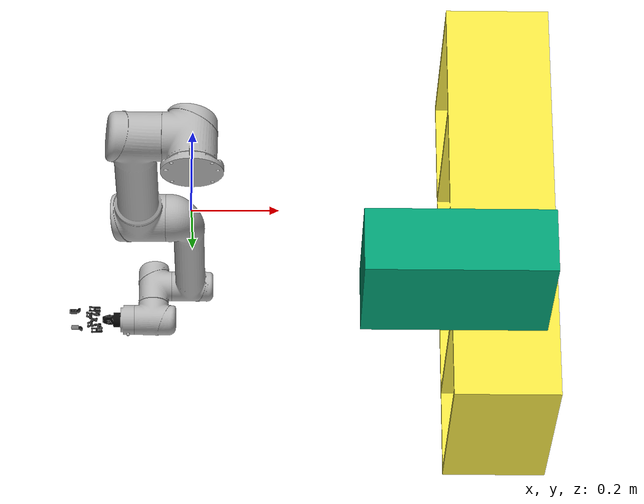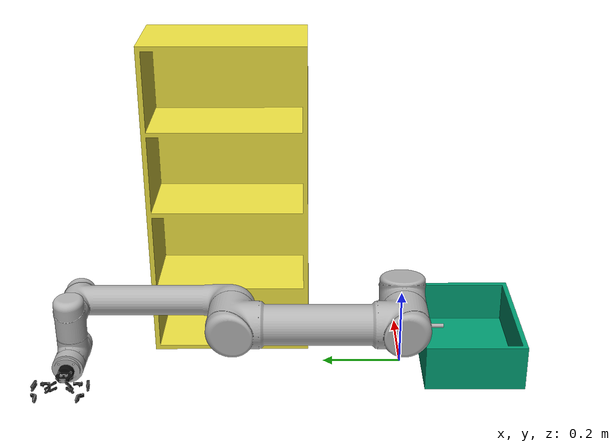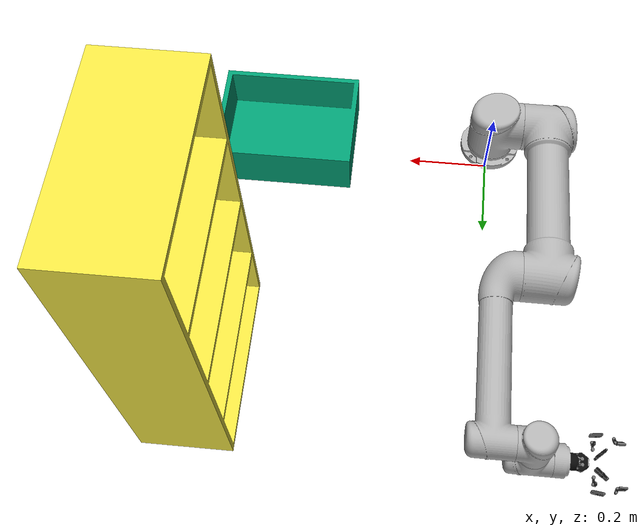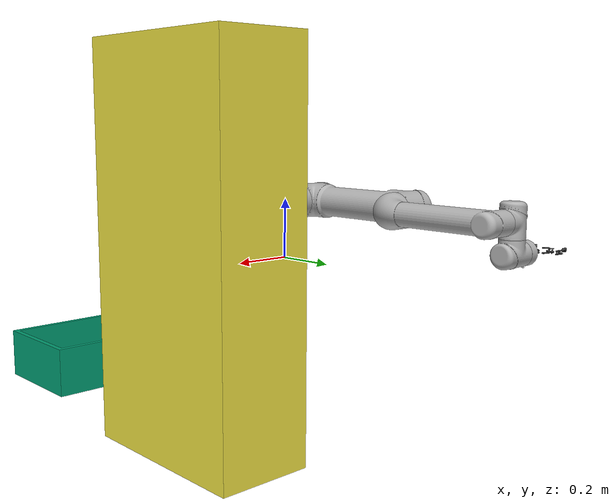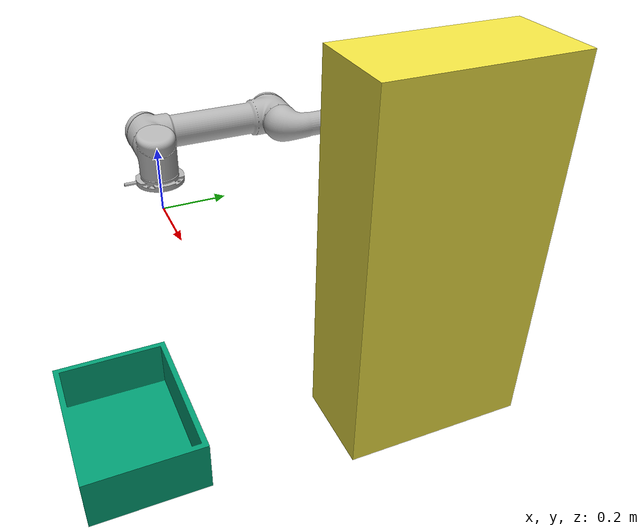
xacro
<?xml version="1.0"?>
<robot xmlns:xacro="http://wiki.ros.org/xacro"
       name="ur5" >

  <xacro:arg name="transmission_hw_interface" default="hardware_interface/PositionJointInterface"/>

  <!-- common stuff -->
  <xacro:include filename="$(find ur_description)/urdf/common.gazebo.xacro" />

  <!-- ur5 and gripper -->
  <xacro:include filename="$(find ur_description)/urdf/ur5.urdf.xacro" />
  <xacro:include filename="$(find robotiq_85_description)/urdf/robotiq_85_gripper.urdf.xacro" />
  <!-- camera and kinecrt  -->
  <xacro:include filename="$(find ur_description)/urdf/sensors/camera.urdf.xacro" />
  <xacro:include filename="$(find ur_description)/urdf/sensors/kinect.urdf.xacro" />

  <!-- bin and cabin  -->
  <xacro:include filename="$(find ur_platform)/urdf/bin.urdf.xacro" />
  <xacro:include filename="$(find ur_platform)/urdf/cabine.urdf.xacro" />

  <!-- arm -->
  <xacro:ur5_robot prefix="" joint_limited="false"
    transmission_hw_interface="$(arg transmission_hw_interface)"
  />

  <link name="world" />

  <joint name="world_joint" type="fixed">
    <parent link="world" />
    <child link = "base_link" />
    <origin xyz="0.0 0.0 0.1" rpy="0.0 0.0 0.0" />
  </joint>

  <xacro:robotiq_85_gripper prefix="" parent="ee_link" >
      <origin xyz="0 0 0" rpy="0 0 0"/>
  </xacro:robotiq_85_gripper>
  <!-- Sensors  -->
  <gazebo>
    <plugin name="gazebo_grasp_fix" filename="libgazebo_grasp_fix.so">
         <arm>
            <arm_name>urz</arm_name>
            <palm_link> wrist_3_link  </palm_link>
            <gripper_link> gripper_finger1_finger_tip_link </gripper_link>
            <gripper_link> gripper_finger2_finger_tip_link </gripper_link>
         </arm>
        <forces_angle_tolerance>90</forces_angle_tolerance>
        <update_rate>150</update_rate>
        <grip_count_threshold>8</grip_count_threshold>
        <max_grip_count>16</max_grip_count>
        <release_tolerance>0.005</release_tolerance>
        <disable_collisions_on_attach>true</disable_collisions_on_attach>
        <contact_topic>__default_topic__</contact_topic>
     </plugin>
 </gazebo>

</robot>

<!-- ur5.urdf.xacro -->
<robot name="urz" xmlns:xacro="http://wiki.ros.org/xacro">

  <xacro:include filename="$(find ur_description)/urdf/ur.transmission.xacro" />
  <xacro:include filename="$(find ur_description)/urdf/ur.gazebo.xacro" />

  <xacro:macro name="cylinder_inertial" params="radius length mass *origin">
    <inertial>
      <mass value="${mass}" />
      <xacro:insert_block name="origin" />
      <inertia ixx="${0.0833333 * mass * (3 * radius * radius + length * length)}" ixy="0.0" ixz="0.0"
        iyy="${0.0833333 * mass * (3 * radius * radius + length * length)}" iyz="0.0"
        izz="${0.5 * mass * radius * radius}" />
    </inertial>
  </xacro:macro>

  <xacro:macro name="ur5_robot" params="prefix joint_limited
    shoulder_pan_lower_limit:=${-pi}    shoulder_pan_upper_limit:=${pi}
    shoulder_lift_lower_limit:=${-pi}    shoulder_lift_upper_limit:=${pi}
    elbow_joint_lower_limit:=${-pi}    elbow_joint_upper_limit:=${pi}
    wrist_1_lower_limit:=${-pi}    wrist_1_upper_limit:=${pi}
    wrist_2_lower_limit:=${-pi}    wrist_2_upper_limit:=${pi}
    wrist_3_lower_limit:=${-pi}    wrist_3_upper_limit:=${pi}
    transmission_hw_interface:=VelocityJointInterface
    safety_limits:=false safety_pos_margin:=0.15
    safety_k_position:=20">

    <!-- Inertia parameters -->
    <xacro:property name="base_mass" value="4.0" />  <!-- This mass might be incorrect -->
    <xacro:property name="shoulder_mass" value="3.7000" />
    <xacro:property name="upper_arm_mass" value="8.3930" />
    <xacro:property name="forearm_mass" value="2.2750" />
    <xacro:property name="wrist_1_mass" value="1.2190" />
    <xacro:property name="wrist_2_mass" value="1.2190" />
    <xacro:property name="wrist_3_mass" value="0.1879" />

    <xacro:property name="shoulder_cog" value="0.0 0.00193 -0.02561" />
    <xacro:property name="upper_arm_cog" value="0.0 -0.024201 0.2125" />
    <xacro:property name="forearm_cog" value="0.0 0.0265 0.11993" />
    <xacro:property name="wrist_1_cog" value="0.0 0.110949 0.01634" />
    <xacro:property name="wrist_2_cog" value="0.0 0.0018 0.11099" />
    <xacro:property name="wrist_3_cog" value="0.0 0.001159 0.0" />

    <!-- Kinematic model -->
    <!-- Properties from urcontrol.conf -->
    <xacro:property name="d1" value="0.089159" />
    <xacro:property name="a2" value="-0.42500" />
    <xacro:property name="a3" value="-0.39225" />
    <xacro:property name="d4" value="0.10915" />
    <xacro:property name="d5" value="0.09465" />
    <xacro:property name="d6" value="0.0823" />

    <!-- Arbitrary offsets for shoulder/elbow joints -->
    <xacro:property name="shoulder_offset" value="0.13585" />  <!-- measured from model -->
    <xacro:property name="elbow_offset" value="-0.1197" /> <!-- measured from model -->

    <!-- link lengths used in model -->
    <xacro:property name="shoulder_height" value="${d1}" />
    <xacro:property name="upper_arm_length" value="${-a2}" />
    <xacro:property name="forearm_length" value="${-a3}" />
    <xacro:property name="wrist_1_length" value="${d4 - elbow_offset - shoulder_offset}" />
    <xacro:property name="wrist_2_length" value="${d5}" />
    <xacro:property name="wrist_3_length" value="${d6}" />
    <!--property name="shoulder_height" value="0.089159" /-->
    <!--property name="shoulder_offset" value="0.13585" /-->  <!-- shoulder_offset - elbow_offset + wrist_1_length = 0.10915 -->
    <!--property name="upper_arm_length" value="0.42500" /-->
    <!--property name="elbow_offset" value="0.1197" /-->       <!-- CAD measured -->
    <!--property name="forearm_length" value="0.39225" /-->
    <!--property name="wrist_1_length" value="0.093" /-->     <!-- CAD measured -->
    <!--property name="wrist_2_length" value="0.09465" /-->   <!-- In CAD this distance is 0.930, but in the spec it is 0.09465 -->
    <!--property name="wrist_3_length" value="0.0823" /-->

    <xacro:property name="shoulder_radius" value="0.060" />   <!-- manually measured -->
    <xacro:property name="upper_arm_radius" value="0.054" />  <!-- manually measured -->
    <xacro:property name="elbow_radius" value="0.060" />      <!-- manually measured -->
    <xacro:property name="forearm_radius" value="0.040" />    <!-- manually measured -->
    <xacro:property name="wrist_radius" value="0.045" />      <!-- manually measured -->

    <link name="${prefix}base_link" >
      <visual>
        <geometry>
          <mesh filename="package://ur_description/meshes/ur5/visual/base.dae" />
        </geometry>
        <material name="LightGrey">
          <color rgba="0.7 0.7 0.7 1.0"/>
        </material>
      </visual>
      <collision>
        <geometry>
          <mesh filename="package://ur_description/meshes/ur5/collision/base.stl" />
        </geometry>
      </collision>
      <xacro:cylinder_inertial radius="0.06" length="0.05" mass="${base_mass}">
        <origin xyz="0.0 0.0 0.0" rpy="0 0 0" />
      </xacro:cylinder_inertial>
    </link>

    <joint name="${prefix}shoulder_pan_joint" type="revolute">
      <parent link="${prefix}base_link" />
      <child link = "${prefix}shoulder_link" />
      <origin xyz="0.0 0.0 ${shoulder_height}" rpy="0.0 0.0 ${pi/2}" />
      <axis xyz="0 0 1" />
      <xacro:unless value="${joint_limited}">
        <limit lower="${-2.0 * pi}" upper="${2.0 * pi}" effort="150.0" velocity="3.15"/>
        <xacro:if value="${safety_limits}">
          <safety_controller soft_lower_limit="${-2.0 * pi + safety_pos_margin}" soft_upper_limit="${2.0 * pi - safety_pos_margin}" k_position="${safety_k_position}" k_velocity="0.0"/>
        </xacro:if>
      </xacro:unless>
      <xacro:if value="${joint_limited}">
        <limit lower="${shoulder_pan_lower_limit}" upper="${shoulder_pan_upper_limit}" effort="150.0" velocity="3.15"/>
        <xacro:if value="${safety_limits}">
          <safety_controller soft_lower_limit="${shoulder_pan_lower_limit + safety_pos_margin}" soft_upper_limit="${shoulder_pan_upper_limit - safety_pos_margin}" k_position="${safety_k_position}" k_velocity="0.0"/>
        </xacro:if>
      </xacro:if>
      <dynamics damping="0.0" friction="0.0"/>
    </joint>

    <link name="${prefix}shoulder_link">
      <visual>
        <geometry>
          <mesh filename="package://ur_description/meshes/ur5/visual/shoulder.dae" />
        </geometry>
        <material name="LightGrey">
          <color rgba="0.7 0.7 0.7 1.0"/>
        </material>
      </visual>
      <collision>
        <geometry>
          <mesh filename="package://ur_description/meshes/ur5/collision/shoulder.stl" />
        </geometry>
      </collision>
      <xacro:cylinder_inertial radius="0.06" length="0.15" mass="${shoulder_mass}">
        <origin xyz="0.0 0.0 0.0" rpy="0 0 0" />
      </xacro:cylinder_inertial>
    </link>

    <joint name="${prefix}shoulder_lift_joint" type="revolute">
      <parent link="${prefix}shoulder_link" />
      <child link = "${prefix}upper_arm_link" />
      <origin xyz="0.0 ${shoulder_offset} 0.0" rpy="0.0 ${pi / 2.0} 0.0" />
      <axis xyz="0 1 0" />
      <xacro:unless value="${joint_limited}">
        <limit lower="${-2.0 * pi}" upper="${2.0 * pi}" effort="150.0" velocity="3.15"/>
        <xacro:if value="${safety_limits}">
          <safety_controller soft_lower_limit="${-2.0 * pi + safety_pos_margin}" soft_upper_limit="${2.0 * pi - safety_pos_margin}" k_position="${safety_k_position}" k_velocity="0.0"/>
        </xacro:if>
      </xacro:unless>
      <xacro:if value="${joint_limited}">
        <limit lower="${shoulder_lift_lower_limit}" upper="${shoulder_lift_upper_limit}" effort="150.0" velocity="3.15"/>
        <xacro:if value="${safety_limits}">
          <safety_controller soft_lower_limit="${shoulder_lift_lower_limit + safety_pos_margin}" soft_upper_limit="${shoulder_lift_upper_limit - safety_pos_margin}" k_position="${safety_k_position}" k_velocity="0.0"/>
        </xacro:if>
      </xacro:if>
      <dynamics damping="0.0" friction="0.0"/>
    </joint>

    <link name="${prefix}upper_arm_link">
      <visual>
        <geometry>
          <mesh filename="package://ur_description/meshes/ur5/visual/upperarm.dae" />
        </geometry>
        <material name="LightGrey">
          <color rgba="0.7 0.7 0.7 1.0"/>
        </material>
      </visual>
      <collision>
        <geometry>
          <mesh filename="package://ur_description/meshes/ur5/collision/upperarm.stl" />
        </geometry>
      </collision>
      <xacro:cylinder_inertial radius="0.06" length="0.56" mass="${upper_arm_mass}">
        <origin xyz="0.0 0.0 0.28" rpy="0 0 0" />
      </xacro:cylinder_inertial>
    </link>

    <joint name="${prefix}elbow_joint" type="revolute">
      <parent link="${prefix}upper_arm_link" />
      <child link = "${prefix}forearm_link" />
      <origin xyz="0.0 ${elbow_offset} ${upper_arm_length}" rpy="0.0 0.0 0.0" />
      <axis xyz="0 1 0" />
      <xacro:unless value="${joint_limited}">
        <limit lower="${-pi}" upper="${pi}" effort="150.0" velocity="3.15"/>
        <xacro:if value="${safety_limits}">
          <safety_controller soft_lower_limit="${-2.0 * pi + safety_pos_margin}" soft_upper_limit="${2.0 * pi - safety_pos_margin}" k_position="${safety_k_position}" k_velocity="0.0"/>
        </xacro:if>
      </xacro:unless>
      <xacro:if value="${joint_limited}">
        <limit lower="${elbow_joint_lower_limit}" upper="${elbow_joint_upper_limit}" effort="150.0" velocity="3.15"/>
        <xacro:if value="${safety_limits}">
          <safety_controller soft_lower_limit="${elbow_joint_lower_limit + safety_pos_margin}" soft_upper_limit="${elbow_joint_upper_limit - safety_pos_margin}" k_position="${safety_k_position}" k_velocity="0.0"/>
        </xacro:if>
      </xacro:if>
      <dynamics damping="0.0" friction="0.0"/>
    </joint>

    <link name="${prefix}forearm_link">
      <visual>
        <geometry>
          <mesh filename="package://ur_description/meshes/ur5/visual/forearm.dae" />
        </geometry>
        <material name="LightGrey">
          <color rgba="0.7 0.7 0.7 1.0"/>
        </material>
      </visual>
      <collision>
        <geometry>
          <mesh filename="package://ur_description/meshes/ur5/collision/forearm.stl" />
        </geometry>
      </collision>
      <xacro:cylinder_inertial radius="0.06" length="${-a3}" mass="${forearm_mass}">
        <origin xyz="0.0 0.0 ${-a3/2}" rpy="0 0 0" />
      </xacro:cylinder_inertial>
    </link>

    <joint name="${prefix}wrist_1_joint" type="revolute">
      <parent link="${prefix}forearm_link" />
      <child link = "${prefix}wrist_1_link" />
      <origin xyz="0.0 0.0 ${forearm_length}" rpy="0.0 ${pi / 2.0} 0.0" />
      <axis xyz="0 1 0" />
      <xacro:unless value="${joint_limited}">
        <limit lower="${-2.0 * pi}" upper="${2.0 * pi}" effort="28.0" velocity="3.2"/>
        <xacro:if value="${safety_limits}">
          <safety_controller soft_lower_limit="${-2.0 * pi + safety_pos_margin}" soft_upper_limit="${2.0 * pi - safety_pos_margin}" k_position="${safety_k_position}" k_velocity="0.0"/>
        </xacro:if>
      </xacro:unless>
      <xacro:if value="${joint_limited}">
        <limit lower="${wrist_1_lower_limit}" upper="${wrist_1_upper_limit}" effort="28.0" velocity="3.2"/>
        <xacro:if value="${safety_limits}">
          <safety_controller soft_lower_limit="${wrist_1_lower_limit + safety_pos_margin}" soft_upper_limit="${wrist_1_upper_limit - safety_pos_margin}" k_position="${safety_k_position}" k_velocity="0.0"/>
        </xacro:if>
      </xacro:if>
      <dynamics damping="0.0" friction="0.0"/>
    </joint>

    <link name="${prefix}wrist_1_link">
      <visual>
        <geometry>
          <mesh filename="package://ur_description/meshes/ur5/visual/wrist1.dae" />
        </geometry>
        <material name="LightGrey">
          <color rgba="0.7 0.7 0.7 1.0"/>
        </material>
      </visual>
      <collision>
        <geometry>
          <mesh filename="package://ur_description/meshes/ur5/collision/wrist1.stl" />
        </geometry>
      </collision>
      <xacro:cylinder_inertial radius="0.06" length="0.12" mass="${wrist_1_mass}">
        <origin xyz="0.0 ${wrist_1_length} 0.0" rpy="0 0 0" />
      </xacro:cylinder_inertial>
    </link>

    <joint name="${prefix}wrist_2_joint" type="revolute">
      <parent link="${prefix}wrist_1_link" />
      <child link = "${prefix}wrist_2_link" />
      <origin xyz="0.0 ${wrist_1_length} 0.0" rpy="0.0 0.0 0.0" />
      <axis xyz="0 0 1" />
      <xacro:unless value="${joint_limited}">
        <limit lower="${-2.0 * pi}" upper="${2.0 * pi}" effort="28.0" velocity="3.2"/>
        <xacro:if value="${safety_limits}">
          <safety_controller soft_lower_limit="${-2.0 * pi + safety_pos_margin}" soft_upper_limit="${2.0 * pi - safety_pos_margin}" k_position="${safety_k_position}" k_velocity="0.0"/>
        </xacro:if>
      </xacro:unless>
      <xacro:if value="${joint_limited}">
        <limit lower="${wrist_2_lower_limit}" upper="${wrist_2_upper_limit}" effort="28.0" velocity="3.2"/>
        <xacro:if value="${safety_limits}">
          <safety_controller soft_lower_limit="${wrist_2_lower_limit + safety_pos_margin}" soft_upper_limit="${wrist_2_upper_limit - safety_pos_margin}" k_position="${safety_k_position}" k_velocity="0.0"/>
        </xacro:if>
      </xacro:if>
      <dynamics damping="0.0" friction="0.0"/>
    </joint>

    <link name="${prefix}wrist_2_link">
      <visual>
        <geometry>
          <mesh filename="package://ur_description/meshes/ur5/visual/wrist2.dae" />
        </geometry>
        <material name="LightGrey">
          <color rgba="0.7 0.7 0.7 1.0"/>
        </material>
      </visual>
      <collision>
        <geometry>
          <mesh filename="package://ur_description/meshes/ur5/collision/wrist2.stl" />
        </geometry>
      </collision>
      <xacro:cylinder_inertial radius="0.06" length="0.12" mass="${wrist_2_mass}">
        <origin xyz="0.0 0.0 ${wrist_2_length}" rpy="0 0 0" />
      </xacro:cylinder_inertial>
    </link>

    <joint name="${prefix}wrist_3_joint" type="revolute">
      <parent link="${prefix}wrist_2_link" />
      <child link = "${prefix}wrist_3_link" />
      <origin xyz="0.0 0.0 ${wrist_2_length}" rpy="0.0 0.0 0.0" />
      <axis xyz="0 1 0" />
      <xacro:unless value="${joint_limited}">
        <limit lower="${-2.0 * pi}" upper="${2.0 * pi}" effort="28.0" velocity="3.2"/>
        <xacro:if value="${safety_limits}">
          <safety_controller soft_lower_limit="${-2.0 * pi + safety_pos_margin}" soft_upper_limit="${2.0 * pi - safety_pos_margin}" k_position="${safety_k_position}" k_velocity="0.0"/>
        </xacro:if>
      </xacro:unless>
      <xacro:if value="${joint_limited}">
        <limit lower="${wrist_3_lower_limit}" upper="${wrist_3_upper_limit}" effort="28.0" velocity="3.2"/>
        <xacro:if value="${safety_limits}">
          <safety_controller soft_lower_limit="${wrist_3_lower_limit + safety_pos_margin}" soft_upper_limit="${wrist_3_upper_limit - safety_pos_margin}" k_position="${safety_k_position}" k_velocity="0.0"/>
        </xacro:if>
      </xacro:if>
      <dynamics damping="0.0" friction="0.0"/>
    </joint>

    <link name="${prefix}wrist_3_link">
      <visual>
        <geometry>
          <mesh filename="package://ur_description/meshes/ur5/visual/wrist3.dae" />
        </geometry>
        <material name="LightGrey">
          <color rgba="0.7 0.7 0.7 1.0"/>
        </material>
      </visual>
      <collision>
        <geometry>
          <mesh filename="package://ur_description/meshes/ur5/collision/wrist3.stl" />
        </geometry>
      </collision>
      <xacro:cylinder_inertial radius="0.0375" length="0.0345" mass="${wrist_3_mass}">
        <origin xyz="0.0 ${wrist_3_length - 0.0345/2} 0.0" rpy="${pi/2} 0 0" />
      </xacro:cylinder_inertial>
    </link>

    <joint name="${prefix}ee_fixed_joint" type="fixed">
      <parent link="${prefix}wrist_3_link" />
      <child link = "${prefix}ee_link" />
      <origin xyz="0.0 ${wrist_3_length} 0.0" rpy="0.0 0.0 ${pi/2.0}" />
    </joint>

    <link name="${prefix}ee_link">
      <collision>
        <geometry>
          <box size="0.01 0.01 0.01"/>
        </geometry>
        <origin rpy="0 0 0" xyz="-0.01 0 0"/>
      </collision>
    </link>

    <xacro:ur_arm_transmission prefix="${prefix}" hw_interface="${transmission_hw_interface}" />
    <xacro:ur_arm_gazebo prefix="${prefix}" />

    <!-- ROS base_link to UR 'Base' Coordinates transform -->
    <link name="${prefix}base"/>
    <joint name="${prefix}base_link-base_fixed_joint" type="fixed">
      <!-- NOTE: this rotation is only needed as long as base_link itself is
                 not corrected wrt the real robot (ie: rotated over 180
                 degrees)
      -->
      <origin xyz="0 0 0" rpy="0 0 ${-pi}"/>
      <parent link="${prefix}base_link"/>
      <child link="${prefix}base"/>
    </joint>

    <!-- Frame coincident with all-zeros TCP on UR controller -->
    <link name="${prefix}tool0"/>
    <joint name="${prefix}wrist_3_link-tool0_fixed_joint" type="fixed">
      <origin xyz="0 ${wrist_3_length} 0" rpy="${pi/-2.0} 0 0"/>
      <parent link="${prefix}wrist_3_link"/>
      <child link="${prefix}tool0"/>
    </joint>

  </xacro:macro>
</robot>

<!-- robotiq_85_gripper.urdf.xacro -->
<robot name="robotiq_85_gripper" xmlns:xacro="http://ros.org/wiki/xacro">
    <xacro:include filename="$(find robotiq_85_description)/urdf/robotiq_85_gripper.transmission.xacro" />

    <xacro:macro name="robotiq_85_gripper" params="prefix parent *origin">

        <joint name="${prefix}gripper_base_joint" type="fixed">
            <parent link="${parent}"/>
            <child link="${prefix}gripper_base_link"/>
            <xacro:insert_block name="origin"/>
        </joint>

        <link name="${prefix}gripper_base_link">
            <visual>
                <geometry>
                    <mesh filename="package://robotiq_85_description/meshes/visual/robotiq_85_base_link.dae"/>
                </geometry>
            </visual>
            <collision>
                <geometry>
                    <mesh filename="package://robotiq_85_description/meshes/collision/robotiq_85_base_link.stl"/>
                </geometry>
            </collision>
            <inertial>
                <mass value="0.636951" />
                <origin xyz="0.0 0.0 0.0" />
                <inertia ixx = "0.000380" ixy = "0.000000" ixz = "0.000000"
                         iyx = "0.000000" iyy = "0.001110" iyz = "0.000000"
                         izx = "0.000000" izy = "0.000000" izz = "0.001171" />
            </inertial>
        </link>

        -->

        <joint name="${prefix}gripper_finger1_joint" type="revolute">
            <parent link="${prefix}gripper_base_link"/>
            <child link="${prefix}gripper_finger1_knuckle_link"/>
            <axis xyz="0 0 1"/>
            <origin rpy="${pi} 0.0 0.0" xyz="0.05490451627 0.03060114443 0.0"/>
            <limit lower="0" upper="0.8" velocity="0.4" effort="5"/>
        </joint>

        <joint name="${prefix}gripper_finger2_joint" type="revolute">
            <parent link="${prefix}gripper_base_link"/>
            <child link="${prefix}gripper_finger2_knuckle_link"/>
            <axis xyz="0 0 1"/>
            <origin rpy="0.0 0.0 0.0" xyz="0.05490451627 -0.03060114443 0.0"/>
            <limit lower="-3.14" upper="3.14" velocity="100.0" effort="5"/>
            <mimic joint="${prefix}gripper_finger1_joint"/>
        </joint>

        <link name="${prefix}gripper_finger1_knuckle_link">
            <visual>
                <geometry>
                    <mesh filename="package://robotiq_85_description/meshes/visual/robotiq_85_knuckle_link.dae"/>
                </geometry>
            </visual>
            <collision>
                <geometry>
                    <mesh filename="package://robotiq_85_description/meshes/collision/robotiq_85_knuckle_link.stl"/>
                </geometry>
            </collision>
            <inertial>
                <mass value="0.018491" />
                <origin xyz="0.0 0.0 0.0" />
                <inertia ixx = "0.000009" ixy = "-0.000001" ixz = "0.000000"
                         iyx = "-0.000001" iyy = "0.000001" iyz = "0.000000"
                         izx = "0.000000" izy = "0.000000" izz = "0.000010" />
            </inertial>
        </link>

        <link name="${prefix}gripper_finger2_knuckle_link">
            <visual>
                <geometry>
                    <mesh filename="package://robotiq_85_description/meshes/visual/robotiq_85_knuckle_link.dae"/>
                </geometry>
            </visual>
            <collision>
                <geometry>
                    <mesh filename="package://robotiq_85_description/meshes/collision/robotiq_85_knuckle_link.stl"/>
                </geometry>
            </collision>
            <inertial>
                <mass value="0.018491" />
                <origin xyz="0.0 0.0 0.0" />
                <inertia ixx = "0.000009" ixy = "-0.000001" ixz = "0.000000"
                         iyx = "-0.000001" iyy = "0.000001" iyz = "0.000000"
                         izx = "0.000000" izy = "0.000000" izz = "0.000010" />
            </inertial>
        </link>

        <joint name="${prefix}gripper_finger1_finger_joint" type="fixed">
            <parent link="${prefix}gripper_finger1_knuckle_link"/>
            <child link="${prefix}gripper_finger1_finger_link"/>
            <origin xyz="-0.00408552455 -0.03148604435 0.0" rpy="0 0 0" />
        </joint>

        <joint name="${prefix}gripper_finger2_finger_joint" type="fixed">
            <parent link="${prefix}gripper_finger2_knuckle_link"/>
            <child link="${prefix}gripper_finger2_finger_link"/>
            <origin xyz="-0.00408552455 -0.03148604435 0.0" rpy="0 0 0" />
        </joint>

        <link name="${prefix}gripper_finger1_finger_link">
            <visual>
                <geometry>
                    <mesh filename="package://robotiq_85_description/meshes/visual/robotiq_85_finger_link.dae"/>
                </geometry>
            </visual>
            <collision>
                <geometry>
                    <mesh filename="package://robotiq_85_description/meshes/collision/robotiq_85_finger_link.stl"/>
                </geometry>
            </collision>
            <inertial>
                <mass value="0.027309" />
                <origin xyz="0.0 0.0 0.0" />
                <inertia ixx = "0.000003" ixy = "-0.000002" ixz = "0.000000"
                         iyx = "-0.000002" iyy = "0.000021" iyz = "0.000000"
                         izx = "0.000000" izy = "0.000000" izz = "0.000020" />
            </inertial>
        </link>

        <link name="${prefix}gripper_finger2_finger_link">
            <visual>
                <geometry>
                    <mesh filename="package://robotiq_85_description/meshes/visual/robotiq_85_finger_link.dae"/>
                </geometry>
            </visual>
            <collision>
                <geometry>
                    <mesh filename="package://robotiq_85_description/meshes/collision/robotiq_85_finger_link.stl"/>
                </geometry>
            </collision>
            <inertial>
                <mass value="0.027309" />
                <origin xyz="0.0 0.0 0.0" />
                <inertia ixx = "0.000003" ixy = "-0.000002" ixz = "0.000000"
                         iyx = "-0.000002" iyy = "0.000021" iyz = "0.000000"
                         izx = "0.000000" izy = "0.000000" izz = "0.000020" />
            </inertial>
        </link>

        <joint name="${prefix}gripper_finger1_inner_knuckle_joint" type="revolute">
            <parent link="${prefix}gripper_base_link"/>
            <child link="${prefix}gripper_finger1_inner_knuckle_link"/>
            <axis xyz="0 0 1"/>
            <origin xyz="0.06142 0.0127 0" rpy="${pi} 0.0 0.0" />
            <limit lower="-3.14" upper="3.14" velocity="100.0" effort="100"/>
            <mimic joint="${prefix}gripper_finger1_joint" offset="0"/>
        </joint>

        <joint name="${prefix}gripper_finger2_inner_knuckle_joint" type="revolute">
            <parent link="${prefix}gripper_base_link"/>
            <child link="${prefix}gripper_finger2_inner_knuckle_link"/>
            <axis xyz="0 0 1"/>
            <origin xyz="0.06142 -0.0127 0" rpy="0 0 0"/>
            <limit lower="-3.14" upper="3.14" velocity="100.0" effort="100"/>
            <mimic joint="${prefix}gripper_finger1_joint" offset="0"/>
        </joint>

        <link name="${prefix}gripper_finger1_inner_knuckle_link">
            <visual>
                <geometry>
                    <mesh filename="package://robotiq_85_description/meshes/visual/robotiq_85_inner_knuckle_link.dae"/>
                </geometry>
            </visual>
            <collision>
                <geometry>
                    <mesh filename="package://robotiq_85_description/meshes/collision/robotiq_85_inner_knuckle_link.stl"/>
                </geometry>
            </collision>
            <inertial>
                <mass value="0.029951" />
                <origin xyz="0.0 0.0 0.0" />
                <inertia ixx = "0.000039" ixy = "0.000000" ixz = "0.000000"
                         iyx = "0.000000" iyy = "0.000005" iyz = "0.000000"
                         izx = "0.000000" izy = "0.000000" izz = "0.000035" />
            </inertial>
        </link>

        <link name="${prefix}gripper_finger2_inner_knuckle_link">
            <visual>
                <geometry>
                    <mesh filename="package://robotiq_85_description/meshes/visual/robotiq_85_inner_knuckle_link.dae"/>
                </geometry>
            </visual>
            <collision>
                <geometry>
                    <mesh filename="package://robotiq_85_description/meshes/collision/robotiq_85_inner_knuckle_link.stl"/>
                </geometry>
            </collision>
            <inertial>
                <mass value="0.029951" />
                <origin xyz="0.0 0.0 0.0" />
                <inertia ixx = "0.000039" ixy = "0.000000" ixz = "0.000000"
                         iyx = "0.000000" iyy = "0.000005" iyz = "0.000000"
                         izx = "0.000000" izy = "0.000000" izz = "0.000035" />
            </inertial>
        </link>

        <joint name="${prefix}gripper_finger1_finger_tip_joint" type="revolute">
            <parent link="${prefix}gripper_finger1_inner_knuckle_link"/>
            <child link="${prefix}gripper_finger1_finger_tip_link"/>
            <axis xyz="0 0 1"/>
            <origin xyz="0.04303959807 -0.03759940821 0.0" rpy="0.0 0.0 0.0"/>
            <limit lower="-3.14" upper="3.14" velocity="100.0" effort="10"/>
            <mimic joint="${prefix}gripper_finger1_joint" multiplier="-1"/>
        </joint>

        <joint name="${prefix}gripper_finger2_finger_tip_joint" type="revolute">
            <parent link="${prefix}gripper_finger2_inner_knuckle_link"/>
            <child link="${prefix}gripper_finger2_finger_tip_link"/>
            <axis xyz="0 0 1"/>
            <origin rpy="0.0 0.0 0.0" xyz="0.04303959807 -0.03759940821  0.0"/>
            <limit lower="-3.14" upper="3.14" velocity="100.0" effort="100"/>
            <mimic joint="${prefix}gripper_finger1_joint" multiplier="-1"/>
        </joint>

        <link name="${prefix}gripper_finger1_finger_tip_link">
            <visual>
                <geometry>
                    <mesh filename="package://robotiq_85_description/meshes/visual/robotiq_85_finger_tip_link.dae"/>
                </geometry>
            </visual>
            <collision>
                <geometry>
                    <mesh filename="package://robotiq_85_description/meshes/collision/robotiq_85_finger_tip_link.stl"/>
                </geometry>
            </collision>
            <inertial>
                <mass value="0.019555" />
                <origin xyz="0.0 0.0 0.0" />
                <inertia ixx = "0.000002" ixy = "0.000000" ixz = "0.000000"
                         iyx = "0.000000" iyy = "0.000005" iyz = "0.000000"
                         izx = "0.000000" izy = "0.000000" izz = "0.000006" />
            </inertial>
        </link>

        <link name="${prefix}gripper_finger2_finger_tip_link">
            <visual>
                <geometry>
                    <mesh filename="package://robotiq_85_description/meshes/visual/robotiq_85_finger_tip_link.dae"/>
                </geometry>
            </visual>
            <collision>
                <geometry>
                    <mesh filename="package://robotiq_85_description/meshes/collision/robotiq_85_finger_tip_link.stl"/>
                </geometry>
            </collision>
            <inertial>
                <mass value="0.019555" />
                <origin xyz="0.0 0.0 0.0" />
                <inertia ixx = "0.000002" ixy = "0.000000" ixz = "0.000000"
                         iyx = "0.000000" iyy = "0.000005" iyz = "0.000000"
                         izx = "0.000000" izy = "0.000000" izz = "0.000006" />
            </inertial>
        </link>

        <xacro:robotiq_85_gripper_transmission prefix="${prefix}" />

    </xacro:macro>
</robot>

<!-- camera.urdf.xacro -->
<!-- BOTTOM FIXED LINK
This link is the base of the arm in which arm is placed
-->
<robot name="camera" xmlns:xacro="http://ros.org/wiki/xacro">

   <material name="red">
        <color rgba="0.8 0.0 0.0 1.0"/>
   </material>
   <joint name="camera_joint" type="fixed">
        <origin xyz="0 0.6 0.9" rpy="0 ${pi/2} ${pi/2}"/>
        <parent link="base_link"/>
        <child link="camera_link"/>
   </joint>

   <!-- Camera -->
   <link name="camera_link">
       <origin xyz="0 0 0" rpy="0 0 0"/>
   </link>

   <xacro:include filename="$(find ur_description)/urdf/sensors/camera.gazebo.xacro"/>
</robot>

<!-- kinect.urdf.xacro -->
<robot xmlns:xacro="http://www.ros.org/wiki/xacro" name="kinect">

        <link name="kinect_link">
            <origin xyz="0 0 0" rpy="0 0 0"/>

        </link>

        <joint name="kinect_joint" type="fixed">
            <origin xyz="0 0.6 0.9" rpy="0 ${pi/2} ${pi/2}"/>
            <parent link="base_link"/>
            <child link="kinect_link"/>
        </joint>

        <xacro:include filename="$(find ur_description)/urdf/sensors/kinect.gazebo.xacro" />

</robot>

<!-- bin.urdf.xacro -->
<!-- |    This document was autogenerated by xacro from bin.urdf                       | -->
<!-- |    EDITING THIS FILE BY HAND IS NOT RECOMMENDED                                 | -->
<robot name="cabine" xmlns:xacro="http://ros.org/wiki/xacro">
  <!-- conveyor belt is just a long flat box for objects to slide on it -->
  <!-- world link -->
  <!-- base_link and its fixed joint -->
  <joint name="joint_fix_bin" type="fixed">
    <parent link="world"/>
    <child link="bin_link"/>
  </joint>
  <link name="bin_link">
    <collision>
      <origin rpy="1.57 0 0" xyz="0.3 0.1 -0.35"/>
      <geometry>
        <mesh filename="package://ur_platform/model/bin.stl"/>
      </geometry>
    </collision>
    <visual>
      <origin rpy="1.57 0 0" xyz="0.3 0.1 -0.35"/>
      <geometry>
        <mesh filename="package://ur_platform/model/bin.stl"/>
      </geometry>
    </visual>
    <inertial>
      <origin rpy="0 0 0" xyz="0 0 0"/>
      <mass value="1"/>
      <inertia ixx="1.0" ixy="0.0" ixz="0.0" iyy="1.0" iyz="0.0" izz="1.0"/>
    </inertial>
  </link>
</robot>

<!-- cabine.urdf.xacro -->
<!-- |    This document was autogenerated by xacro from cabine.urdf                    | -->
<!-- |    EDITING THIS FILE BY HAND IS NOT RECOMMENDED                                 | -->
<robot name="cabine" xmlns:xacro="http://wiki.ros.org/xacro">
  <!-- conveyor belt is just a long flat box for objects to slide on it -->
  <!-- world link -->
  <!-- base_link and its fixed joint -->
  <joint name="joint_fix_cabine" type="fixed">
    <parent link="world"/>
    <child link="cabine_link"/>
  </joint>
  <link name="cabine_link">
    <collision>
      <origin rpy="1.57 0 0" xyz="0.2 0.35 -0.35"/>
      <geometry>
        <mesh filename="package://ur_platform/model/emo-platform-cabinet.stl"/>
      </geometry>
    </collision>
    <visual>
      <origin rpy="1.57 0 0" xyz="0.2 0.35 -0.35"/>
      <geometry>
        <mesh filename="package://ur_platform/model/emo-platform-cabinet.stl"/>
      </geometry>
    </visual>
    <inertial>
      <origin rpy="0 0 0" xyz="0 0 0"/>
      <mass value="1"/>
      <inertia ixx="1.0" ixy="0.0" ixz="0.0" iyy="1.0" iyz="0.0" izz="1.0"/>
    </inertial>
  </link>
</robot>
